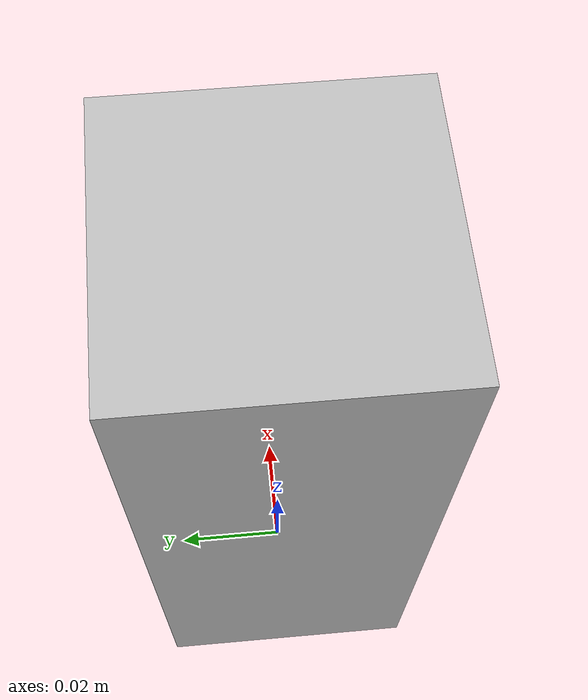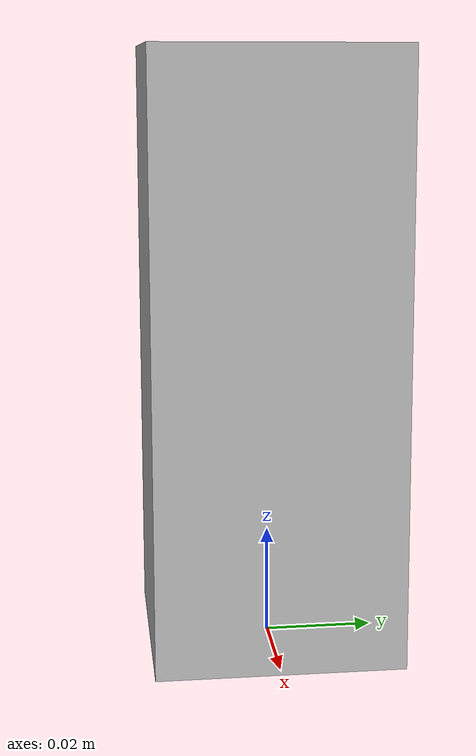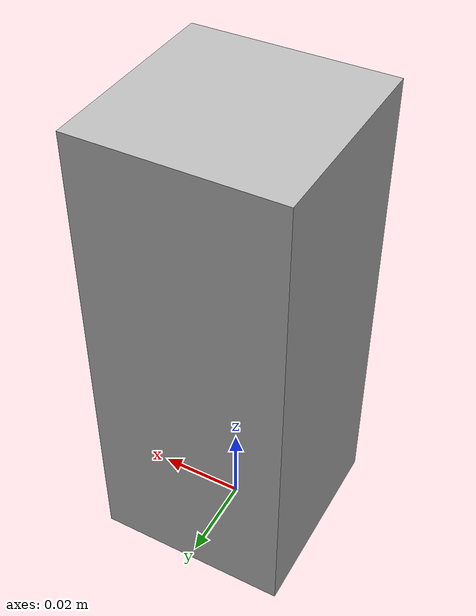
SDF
<?xml version='1.0'?>
<sdf version='1.6'>
  <model name="virtual_wall">
    <link name="base">
      <pose>0 0 0.055 0 0 0</pose>
      <collision name="base_collision">
        <geometry>
          <box>
            <size>0.045 0.045 0.110</size>
          </box>
        </geometry>
      </collision>

     <inertial>
       <mass>0.18</mass>
       <inertia>
         <ixx>0.000211875</ixx>
         <iyy>0.000211875</iyy>
         <izz>0.000060750</izz>
         <ixy>0</ixy>
         <ixz>0</ixz>
         <iyz>0</iyz>
        </inertia>
      </inertial>

      <visual name="base_visual">
        <geometry>
          <box>
            <size>0.045 0.045 0.110</size>
          </box>
        </geometry>
      </visual>

      <sensor type="ray" name="ir_led">
        <pose>0 0 0.025 0 0 0</pose>
        <visualize>true</visualize>
        <update_rate>30</update_rate>

        <plugin name="virtual_wall_plugin" filename="libcreate_virtual_wall_plugin.so">
          <rconDistance>1</rconDistance>
        </plugin>

        <ray>
          <scan>
            <horizontal>
              <samples>1</samples>
              <resolution>1</resolution>
              <min_angle>0</min_angle>
              <max_angle>0.175</max_angle>
            </horizontal>
          </scan>
          <range>
            <min>0.05</min>
            <max>10</max>
            <resolution>0.02</resolution>
          </range>
        </ray>
      </sensor>
    </link>
    <static>true</static>
  </model>
</sdf>
